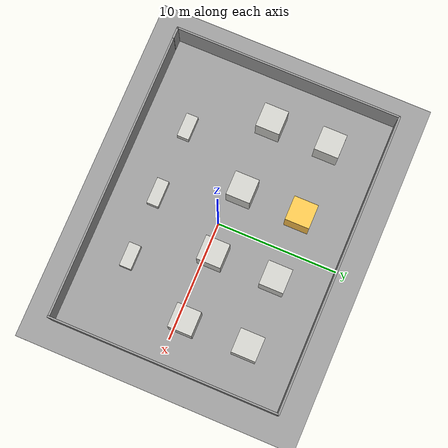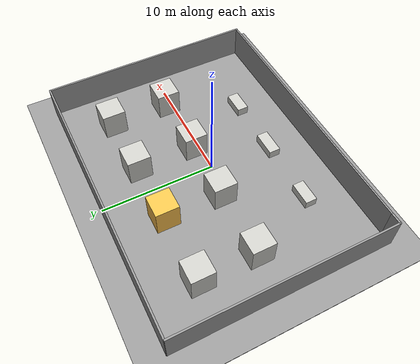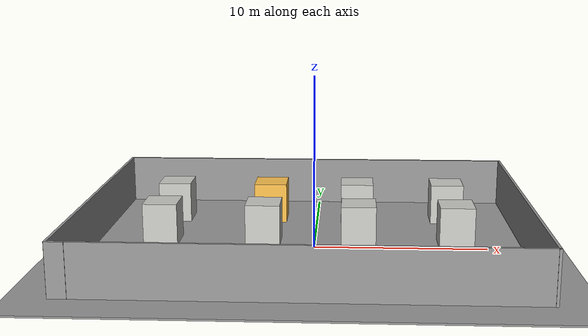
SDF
<sdf version="1.7">
 <world name="default">
  <light name="sun" type="directional">
   <pose>0 0 10 0 -0 0</pose>
   <diffuse>0.8 0.8 0.8 1</diffuse>
   <specular>0.2 0.2 0.2 1</specular>
   <attenuation>
    <range>1000</range>
    <constant>0.9</constant>
    <linear>0.01</linear>
    <quadratic>0.001</quadratic>
   </attenuation>
   <direction>-0.5 0.1 -0.9</direction>
   <spot><inner_angle>0</inner_angle><outer_angle>0</outer_angle><falloff>0</falloff></spot>
  </light>
  <model name="ground_plane">
   <static>1</static>
   <link name="link">
    <collision name="collision">
     <geometry><plane><normal>0 0 1</normal><size>100 100</size></plane></geometry>
     <surface><friction><ode><mu>100</mu><mu2>50</mu2></ode></friction></surface>
    </collision>
    <visual name="visual">
     <cast_shadows>0</cast_shadows>
     <geometry><plane><normal>0 0 1</normal><size>100 100</size></plane></geometry>
     <material>
      <script><uri>file://media/materials/scripts/gazebo.material</uri><name>Gazebo/Grey</name></script>
     </material>
    </visual>
   </link>
  </model>
  <gravity>0 0 -9.8</gravity>
  <magnetic_field>6e-06 2.3e-05 -4.2e-05</magnetic_field>
  <atmosphere type="adiabatic"/>
  <physics type="ode">
   <max_step_size>0.001</max_step_size>
   <real_time_factor>1</real_time_factor>
   <real_time_update_rate>1000</real_time_update_rate>
  </physics>
  <scene><ambient>0.4 0.4 0.4 1</ambient><background>0.7 0.7 0.7 1</background><shadows>1</shadows></scene>
  <audio><device>default</device></audio>
  <spherical_coordinates>
   <surface_model>EARTH_WGS84</surface_model>
   <latitude_deg>0</latitude_deg>
   <longitude_deg>0</longitude_deg>
   <elevation>0</elevation>
   <heading_deg>0</heading_deg>
  </spherical_coordinates>
  <model name="fms_map">
   <pose>-0.382 0.528999 0 0 -0 0</pose>
   <link name="Door_0">
    <collision name="Door_0_Collision">
     <geometry><box><size>1 0.17 3</size></box></geometry>
     <pose>0 0 1.5 0 -0 0</pose>
    </collision>
    <visual name="Door_0_Visual">
     <pose>0 0 1.5 0 -0 0</pose>
     <geometry><box><size>1 0.17 3</size></box></geometry>
     <material>
      <script><uri>file://media/materials/scripts/gazebo.material</uri><name>Gazebo/Grey</name></script>
     </material>
    </visual>
    <pose>-12.0107 -9.44087 0 0 -0 0</pose>
   </link>
   <link name="Wall_0">
    <collision name="Wall_0_Collision">
     <geometry><box><size>2 1 0.8</size></box></geometry>
     <pose>0 0 0.4 0 -0 0</pose>
    </collision>
    <visual name="Wall_0_Visual">
     <pose>0 0 0.4 0 -0 0</pose>
     <geometry><box><size>2 1 0.8</size></box></geometry>
     <material>
      <script><uri>file://media/materials/scripts/gazebo.material</uri><name>Gazebo/CeilingTiled</name></script>
      <ambient>0.760784 0.662745 0.627451 1</ambient>
     </material>
     <meta><layer>0</layer></meta>
    </visual>
    <pose>-5.83285 -5.84017 0 0 -0 0</pose>
   </link>
   <link name="Wall_12">
    <collision name="Wall_12_Collision">
     <geometry><box><size>2.01 2 2.5</size></box></geometry>
     <pose>0 0 1.25 0 -0 0</pose>
    </collision>
    <visual name="Wall_12_Visual">
     <pose>0 0 1.25 0 -0 0</pose>
     <geometry><box><size>2.01 2 2.5</size></box></geometry>
     <material>
      <script><uri>file://media/materials/scripts/gazebo.material</uri><name>Gazebo/CeilingTiled</name></script>
      <ambient>1 0.764706 0.305882 1</ambient>
     </material>
     <meta><layer>0</layer></meta>
    </visual>
    <pose>-2.63088 0.245509 0 0 -0 3.14159</pose>
   </link>
   <link name="Wall_14">
    <collision name="Wall_14_Collision">
     <geometry><box><size>2.01 2 2.5</size></box></geometry>
     <pose>0 0 1.25 0 -0 0</pose>
    </collision>
    <visual name="Wall_14_Visual">
     <pose>0 0 1.25 0 -0 0</pose>
     <geometry><box><size>2.01 2 2.5</size></box></geometry>
     <material>
      <script><uri>file://media/materials/scripts/gazebo.material</uri><name>Gazebo/CeilingTiled</name></script>
      <ambient>1 0.764706 0.305882 1</ambient>
     </material>
     <meta><layer>0</layer></meta>
    </visual>
    <pose>2.93468 0.10991 0 0 -0 3.14159</pose>
   </link>
   <link name="Wall_17">
    <collision name="Wall_17_Collision">
     <geometry><box><size>2.01 2 2.5</size></box></geometry>
     <pose>0 0 1.25 0 -0 0</pose>
    </collision>
    <visual name="Wall_17_Visual">
     <pose>0 0 1.25 0 -0 0</pose>
     <geometry><box><size>2.01 2 2.5</size></box></geometry>
     <material>
      <script><uri>file://media/materials/scripts/gazebo.material</uri><name>Gazebo/CeilingTiled</name></script>
      <ambient>1 0.764706 0.305882 1</ambient>
     </material>
     <meta><layer>0</layer></meta>
    </visual>
    <pose>8.59459 0.119927 0 0 -0 3.14159</pose>
   </link>
   <link name="Wall_2">
    <collision name="Wall_2_Collision">
     <geometry><box><size>2.2 1 0.8</size></box></geometry>
     <pose>0 0 0.4 0 -0 0</pose>
    </collision>
    <visual name="Wall_2_Visual">
     <pose>0 0 0.4 0 -0 0</pose>
     <geometry><box><size>2.2 1 0.8</size></box></geometry>
     <material>
      <script><uri>file://media/materials/scripts/gazebo.material</uri><name>Gazebo/CeilingTiled</name></script>
      <ambient>0.760784 0.662745 0.627451 1</ambient>
     </material>
     <meta><layer>0</layer></meta>
    </visual>
    <pose>0.027847 -5.91113 0 0 -0 0</pose>
   </link>
   <link name="Wall_20">
    <collision name="Wall_20_Collision">
     <geometry><box><size>2.01 2 2.5</size></box></geometry>
     <pose>0 0 1.25 0 -0 0</pose>
    </collision>
    <visual name="Wall_20_Visual">
     <pose>0 0 1.25 0 -0 0</pose>
     <geometry><box><size>2.01 2 2.5</size></box></geometry>
     <material>
      <script><uri>file://media/materials/scripts/gazebo.material</uri><name>Gazebo/CeilingTiled</name></script>
      <ambient>1 0.764706 0.305882 1</ambient>
     </material>
     <meta><layer>0</layer></meta>
    </visual>
    <pose>-8.61854 5.22841 0 0 -0 -1.5708</pose>
   </link>
   <link name="Wall_22">
    <collision name="Wall_22_Collision">
     <geometry><box><size>2.01 2 2.5</size></box></geometry>
     <pose>0 0 1.25 0 -0 0</pose>
    </collision>
    <visual name="Wall_22_Visual">
     <pose>0 0 1.25 0 -0 0</pose>
     <geometry><box><size>2.01 2 2.5</size></box></geometry>
     <material>
      <script><uri>file://media/materials/scripts/gazebo.material</uri><name>Gazebo/Grey</name></script>
      <ambient>1 0.764706 0.305882 1</ambient>
     </material>
     <meta><layer>0</layer></meta>
    </visual>
    <pose>-2.56179 5.24369 0 0 -0 -1.5708</pose>
   </link>
   <link name="Wall_24">
    <collision name="Wall_24_Collision">
     <geometry><box><size>2.01 2 2.5</size></box></geometry>
     <pose>0 0 1.25 0 -0 0</pose>
    </collision>
    <visual name="Wall_24_Visual">
     <pose>0 0 1.25 0 -0 0</pose>
     <geometry><box><size>2.01 2 2.5</size></box></geometry>
     <material>
      <script><uri>file://media/materials/scripts/gazebo.material</uri><name>Gazebo/CeilingTiled</name></script>
      <ambient>1 0.764706 0.305882 1</ambient>
     </material>
     <meta><layer>0</layer></meta>
    </visual>
    <pose>2.87274 5.31253 0 0 -0 -1.5708</pose>
   </link>
   <link name="Wall_26">
    <collision name="Wall_26_Collision">
     <geometry><box><size>2.01 2 2.5</size></box></geometry>
     <pose>0 0 1.25 0 -0 0</pose>
    </collision>
    <visual name="Wall_26_Visual">
     <pose>0 0 1.25 0 -0 0</pose>
     <geometry><box><size>2.01 2 2.5</size></box></geometry>
     <material>
      <script><uri>file://media/materials/scripts/gazebo.material</uri><name>Gazebo/CeilingTiled</name></script>
      <ambient>1 0.764706 0.305882 1</ambient>
     </material>
     <meta><layer>0</layer></meta>
    </visual>
    <pose>8.50438 5.3499 0 0 -0 -1.5708</pose>
   </link>
   <link name="Wall_4">
    <collision name="Wall_4_Collision">
     <geometry><box><size>2 1 0.8</size></box></geometry>
     <pose>0 0 0.4 0 -0 0</pose>
    </collision>
    <visual name="Wall_4_Visual">
     <pose>0 0 0.4 0 -0 0</pose>
     <geometry><box><size>2 1 0.8</size></box></geometry>
     <material>
      <script><uri>file://media/materials/scripts/gazebo.material</uri><name>Gazebo/CeilingTiled</name></script>
      <ambient>0.760784 0.662745 0.627451 1</ambient>
     </material>
     <meta><layer>0</layer></meta>
    </visual>
    <pose>5.52799 -5.89077 0 0 -0 3.14159</pose>
   </link>
   <link name="Wall_50">
    <collision name="Wall_50_Collision">
     <geometry><box><size>24 0.15 3</size></box></geometry>
     <pose>0 0 1.5 0 -0 0</pose>
    </collision>
    <visual name="Wall_50_Visual">
     <pose>0 0 1.5 0 -0 0</pose>
     <geometry><box><size>24 0.15 3</size></box></geometry>
     <material>
      <script><uri>file://media/materials/scripts/gazebo.material</uri><name>Gazebo/Grey</name></script>
      <ambient>1 1 1 1</ambient>
     </material>
     <meta><layer>0</layer></meta>
    </visual>
    <pose>0.494 -9.44 0 0 -0 3.14159</pose>
   </link>
   <link name="Wall_52">
    <collision name="Wall_52_Collision">
     <geometry><box><size>25 0.15 3</size></box></geometry>
     <pose>0 0 1.5 0 -0 0</pose>
    </collision>
    <visual name="Wall_52_Visual">
     <pose>0 0 1.5 0 -0 0</pose>
     <geometry><box><size>25 0.15 3</size></box></geometry>
     <material>
      <script><uri>file://media/materials/scripts/gazebo.material</uri><name>Gazebo/Grey</name></script>
      <ambient>1 1 1 1</ambient>
     </material>
     <meta><layer>0</layer></meta>
    </visual>
    <pose>0.021 9.466 0 0 -0 3.14159</pose>
   </link>
   <link name="Wall_54">
    <collision name="Wall_54_Collision">
     <geometry><box><size>19 0.15 3</size></box></geometry>
     <pose>0 0 1.5 0 -0 0</pose>
    </collision>
    <visual name="Wall_54_Visual">
     <pose>0 0 1.5 0 -0 0</pose>
     <geometry><box><size>19 0.15 3</size></box></geometry>
     <material>
      <script><uri>file://media/materials/scripts/gazebo.material</uri><name>Gazebo/Grey</name></script>
      <ambient>1 1 1 1</ambient>
     </material>
     <meta><layer>0</layer></meta>
    </visual>
    <pose>-12.448 -0.003999 0 0 -0 1.5708</pose>
   </link>
   <link name="Wall_56">
    <collision name="Wall_56_Collision">
     <geometry><box><size>19 0.15 3</size></box></geometry>
     <pose>0 0 1.5 0 -0 0</pose>
    </collision>
    <visual name="Wall_56_Visual">
     <pose>0 0 1.5 0 -0 0</pose>
     <geometry><box><size>19 0.15 3</size></box></geometry>
     <material>
      <script><uri>file://media/materials/scripts/gazebo.material</uri><name>Gazebo/Grey</name></script>
      <ambient>1 1 1 1</ambient>
     </material>
     <meta><layer>0</layer></meta>
    </visual>
    <pose>12.448 -0.040999 0 0 -0 -1.5708</pose>
   </link>
   <link name="Wall_9">
    <collision name="Wall_9_Collision">
     <geometry><box><size>2.01 2 2.5</size></box></geometry>
     <pose>0 0 1.25 0 -0 0</pose>
    </collision>
    <visual name="Wall_9_Visual">
     <pose>0 0 1.25 0 -0 0</pose>
     <geometry><box><size>2.01 2 2.5</size></box></geometry>
     <material>
      <script><uri>file://media/materials/scripts/gazebo.material</uri><name>Gazebo/CeilingTiled</name></script>
      <ambient>1 0.764706 0.305882 1</ambient>
     </material>
     <meta><layer>0</layer></meta>
    </visual>
    <pose>-8.60664 0.270826 0 0 -0 -1.5708</pose>
   </link>
   <static>1</static>
  </model>
  <model name="ground_plane_0">
   <static>1</static>
   <link name="link">
    <collision name="collision">
     <geometry><plane><normal>0 0 1</normal><size>100 100</size></plane></geometry>
     <surface>
      <contact><collide_bitmask>65535</collide_bitmask></contact>
      <friction><ode><mu>100</mu><mu2>50</mu2></ode></friction>
     </surface>
    </collision>
    <visual name="visual">
     <cast_shadows>0</cast_shadows>
     <geometry><plane><normal>0 0 1</normal><size>100 100</size></plane></geometry>
     <material>
      <script><uri>file://media/materials/scripts/gazebo.material</uri><name>Gazebo/Grey</name></script>
     </material>
    </visual>
   </link>
   <pose>-3.98989 -9.86079 0 0 -0 0</pose>
  </model>
 </world>
</sdf>
